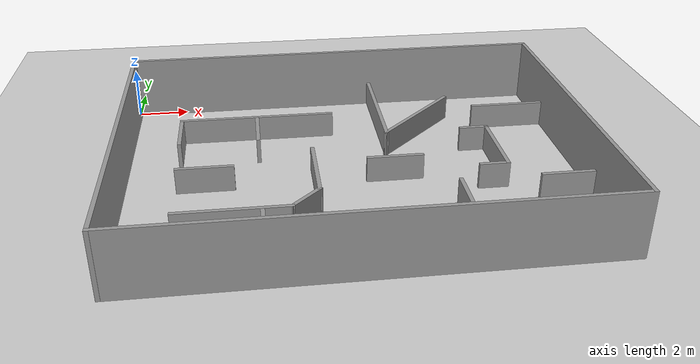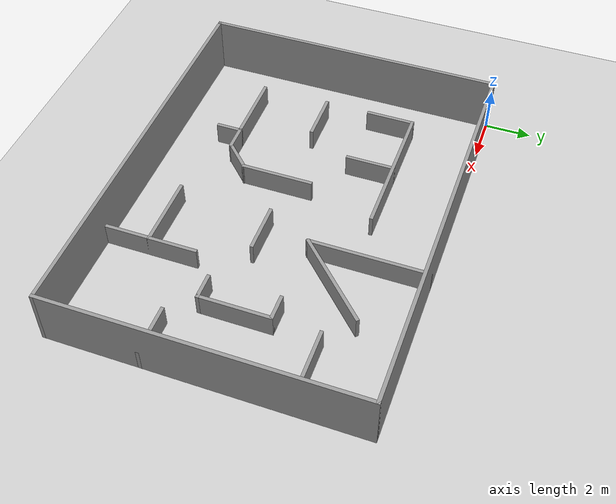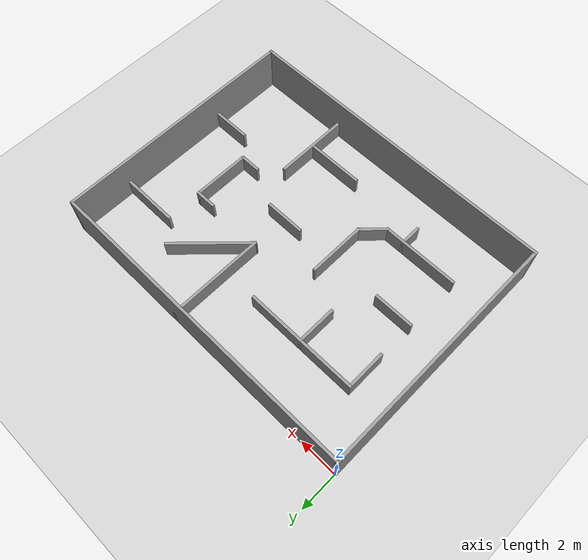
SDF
<sdf version="1.4">
 <world name="default">
  <light name="sun" type="directional">
   <pose>0 0 10 0 -0 0</pose>
   <diffuse>0.8 0.8 0.8 1</diffuse>
   <specular>0.2 0.2 0.2 1</specular>
   <attenuation>
    <range>1000</range>
    <constant>0.9</constant>
    <linear>0.01</linear>
    <quadratic>0.001</quadratic>
   </attenuation>
   <direction>-0.5 0.1 -0.9</direction>
   <spot><inner_angle>0</inner_angle><outer_angle>0</outer_angle><falloff>0</falloff></spot>
  </light>
  <model name="ground_plane">
   <static>1</static>
   <link name="link">
    <collision name="collision">
     <geometry><plane><normal>0 0 1</normal><size>100 100</size></plane></geometry>
     <surface>
      <contact><collide_bitmask>65535</collide_bitmask></contact>
      <friction><ode><mu>100</mu><mu2>50</mu2></ode></friction>
     </surface>
    </collision>
    <visual name="visual">
     <cast_shadows>0</cast_shadows>
     <geometry><plane><normal>0 0 1</normal><size>100 100</size></plane></geometry>
     <material>
      <script><uri>file://media/materials/scripts/gazebo.material</uri><name>Gazebo/Grey</name></script>
     </material>
    </visual>
   </link>
  </model>
  <gravity>0 0 -9.8</gravity>
  <magnetic_field>6e-06 2.3e-05 -4.2e-05</magnetic_field>
  <atmosphere type="adiabatic"/>
  <physics type="ode">
   <max_step_size>0.001</max_step_size>
   <real_time_factor>1</real_time_factor>
   <real_time_update_rate>1000</real_time_update_rate>
  </physics>
  <scene><ambient>0.4 0.4 0.4 1</ambient><background>0.7 0.7 0.7 1</background><shadows>1</shadows></scene>
  <spherical_coordinates>
   <surface_model>EARTH_WGS84</surface_model>
   <latitude_deg>0</latitude_deg>
   <longitude_deg>0</longitude_deg>
   <elevation>0</elevation>
   <heading_deg>0</heading_deg>
  </spherical_coordinates>
  <model name="ppo_maze_0">
   <pose>8.5 -6.5 0 0 -0 0</pose>
   <link name="Wall_343">
    <collision name="Wall_343_Collision">
     <geometry><box><size>17.15 0.15 2.5</size></box></geometry>
     <pose>0 0 1.25 0 -0 0</pose>
    </collision>
    <visual name="Wall_343_Visual">
     <pose>0 0 1.25 0 -0 0</pose>
     <geometry><box><size>17.15 0.15 2.5</size></box></geometry>
     <material>
      <script><uri>file://media/materials/scripts/gazebo.material</uri><name>Gazebo/Grey</name></script>
      <ambient>1 1 1 1</ambient>
     </material>
     <meta><layer>0</layer></meta>
    </visual>
    <pose>0 6.5 0 0 -0 0</pose>
   </link>
   <link name="Wall_344">
    <collision name="Wall_344_Collision">
     <geometry><box><size>13.15 0.15 2.5</size></box></geometry>
     <pose>0 0 1.25 0 -0 0</pose>
    </collision>
    <visual name="Wall_344_Visual">
     <pose>0 0 1.25 0 -0 0</pose>
     <geometry><box><size>13.15 0.15 2.5</size></box></geometry>
     <material>
      <script><uri>file://media/materials/scripts/gazebo.material</uri><name>Gazebo/Grey</name></script>
      <ambient>1 1 1 1</ambient>
     </material>
     <meta><layer>0</layer></meta>
    </visual>
    <pose>8.5 0 0 0 -0 -1.5708</pose>
   </link>
   <link name="Wall_345">
    <collision name="Wall_345_Collision">
     <geometry><box><size>17.15 0.15 2.5</size></box></geometry>
     <pose>0 0 1.25 0 -0 0</pose>
    </collision>
    <visual name="Wall_345_Visual">
     <pose>0 0 1.25 0 -0 0</pose>
     <geometry><box><size>17.15 0.15 2.5</size></box></geometry>
     <material>
      <script><uri>file://media/materials/scripts/gazebo.material</uri><name>Gazebo/Grey</name></script>
      <ambient>1 1 1 1</ambient>
     </material>
     <meta><layer>0</layer></meta>
    </visual>
    <pose>0 -6.5 0 0 -0 3.14159</pose>
   </link>
   <link name="Wall_346">
    <collision name="Wall_346_Collision">
     <geometry><box><size>13.15 0.15 2.5</size></box></geometry>
     <pose>0 0 1.25 0 -0 0</pose>
    </collision>
    <visual name="Wall_346_Visual">
     <pose>0 0 1.25 0 -0 0</pose>
     <geometry><box><size>13.15 0.15 2.5</size></box></geometry>
     <material>
      <script><uri>file://media/materials/scripts/gazebo.material</uri><name>Gazebo/Grey</name></script>
      <ambient>1 1 1 1</ambient>
     </material>
     <meta><layer>0</layer></meta>
    </visual>
    <pose>-8.5 0 0 0 -0 1.5708</pose>
   </link>
   <link name="Wall_348">
    <collision name="Wall_348_Collision">
     <geometry><box><size>2.15 0.15 1</size></box></geometry>
     <pose>0 0 0.5 0 -0 0</pose>
    </collision>
    <visual name="Wall_348_Visual">
     <pose>0 0 0.5 0 -0 0</pose>
     <geometry><box><size>2.15 0.15 1</size></box></geometry>
     <material>
      <script><uri>file://media/materials/scripts/gazebo.material</uri><name>Gazebo/Grey</name></script>
      <ambient>1 1 1 1</ambient>
     </material>
     <meta><layer>0</layer></meta>
    </visual>
    <pose>7.5 -2.5 0 0 -0 3.14159</pose>
   </link>
   <link name="Wall_350">
    <collision name="Wall_350_Collision">
     <geometry><box><size>2.15 0.15 1</size></box></geometry>
     <pose>0 0 0.5 0 -0 0</pose>
    </collision>
    <visual name="Wall_350_Visual">
     <pose>0 0 0.5 0 -0 0</pose>
     <geometry><box><size>2.15 0.15 1</size></box></geometry>
     <material>
      <script><uri>file://media/materials/scripts/gazebo.material</uri><name>Gazebo/Grey</name></script>
      <ambient>1 1 1 1</ambient>
     </material>
     <meta><layer>0</layer></meta>
    </visual>
    <pose>-6.5 2.5 0 0 -0 1.5708</pose>
   </link>
   <link name="Wall_351">
    <collision name="Wall_351_Collision">
     <geometry><box><size>6.15 0.15 1</size></box></geometry>
     <pose>0 0 0.5 0 -0 0</pose>
    </collision>
    <visual name="Wall_351_Visual">
     <pose>0 0 0.5 0 -0 0</pose>
     <geometry><box><size>6.15 0.15 1</size></box></geometry>
     <material>
      <script><uri>file://media/materials/scripts/gazebo.material</uri><name>Gazebo/Grey</name></script>
      <ambient>1 1 1 1</ambient>
     </material>
     <meta><layer>0</layer></meta>
    </visual>
    <pose>-3.5 3.5 0 0 -0 0</pose>
   </link>
   <link name="Wall_353">
    <collision name="Wall_353_Collision">
     <geometry><box><size>2.15 0.15 1</size></box></geometry>
     <pose>0 0 0.5 0 -0 0</pose>
    </collision>
    <visual name="Wall_353_Visual">
     <pose>0 0 0.5 0 -0 0</pose>
     <geometry><box><size>2.15 0.15 1</size></box></geometry>
     <material>
      <script><uri>file://media/materials/scripts/gazebo.material</uri><name>Gazebo/Grey</name></script>
      <ambient>1 1 1 1</ambient>
     </material>
     <meta><layer>0</layer></meta>
    </visual>
    <pose>-3.5 2.5 0 0 -0 -1.5708</pose>
   </link>
   <link name="Wall_355">
    <collision name="Wall_355_Collision">
     <geometry><box><size>5.15 0.15 1</size></box></geometry>
     <pose>0 0 0.5 0 -0 0</pose>
    </collision>
    <visual name="Wall_355_Visual">
     <pose>0 0 0.5 0 -0 0</pose>
     <geometry><box><size>5.15 0.15 1</size></box></geometry>
     <material>
      <script><uri>file://media/materials/scripts/gazebo.material</uri><name>Gazebo/Grey</name></script>
      <ambient>1 1 1 1</ambient>
     </material>
     <meta><layer>0</layer></meta>
    </visual>
    <pose>1.5 4 0 0 -0 -1.5708</pose>
   </link>
   <link name="Wall_356">
    <collision name="Wall_356_Collision">
     <geometry><box><size>4.39264 0.15 1</size></box></geometry>
     <pose>0 0 0.5 0 -0 0</pose>
    </collision>
    <visual name="Wall_356_Visual">
     <pose>0 0 0.5 0 -0 0</pose>
     <geometry><box><size>4.39264 0.15 1</size></box></geometry>
     <material>
      <script><uri>file://media/materials/scripts/gazebo.material</uri><name>Gazebo/Grey</name></script>
      <ambient>1 1 1 1</ambient>
     </material>
     <meta><layer>0</layer></meta>
    </visual>
    <pose>3 3 0 0 -0 0.785398</pose>
   </link>
   <link name="Wall_358">
    <collision name="Wall_358_Collision">
     <geometry><box><size>3.15 0.15 1</size></box></geometry>
     <pose>0 0 0.5 0 -0 0</pose>
    </collision>
    <visual name="Wall_358_Visual">
     <pose>0 0 0.5 0 -0 0</pose>
     <geometry><box><size>3.15 0.15 1</size></box></geometry>
     <material>
      <script><uri>file://media/materials/scripts/gazebo.material</uri><name>Gazebo/Grey</name></script>
      <ambient>1 1 1 1</ambient>
     </material>
     <meta><layer>0</layer></meta>
    </visual>
    <pose>7 3.453 0 0 -0 3.14159</pose>
   </link>
   <link name="Wall_360">
    <collision name="Wall_360_Collision">
     <geometry><box><size>1.15 0.15 1</size></box></geometry>
     <pose>0 0 0.5 0 -0 0</pose>
    </collision>
    <visual name="Wall_360_Visual">
     <pose>0 0 0.5 0 -0 0</pose>
     <geometry><box><size>1.15 0.15 1</size></box></geometry>
     <material>
      <script><uri>file://media/materials/scripts/gazebo.material</uri><name>Gazebo/Grey</name></script>
      <ambient>1 1 1 1</ambient>
     </material>
     <meta><layer>0</layer></meta>
    </visual>
    <pose>5 1.5 0 0 -0 0</pose>
   </link>
   <link name="Wall_361">
    <collision name="Wall_361_Collision">
     <geometry><box><size>3.15 0.15 1</size></box></geometry>
     <pose>0 0 0.5 0 -0 0</pose>
    </collision>
    <visual name="Wall_361_Visual">
     <pose>0 0 0.5 0 -0 0</pose>
     <geometry><box><size>3.15 0.15 1</size></box></geometry>
     <material>
      <script><uri>file://media/materials/scripts/gazebo.material</uri><name>Gazebo/Grey</name></script>
      <ambient>1 1 1 1</ambient>
     </material>
     <meta><layer>0</layer></meta>
    </visual>
    <pose>5.5 0 0 0 -0 -1.5708</pose>
   </link>
   <link name="Wall_362">
    <collision name="Wall_362_Collision">
     <geometry><box><size>1.15 0.15 1</size></box></geometry>
     <pose>0 0 0.5 0 -0 0</pose>
    </collision>
    <visual name="Wall_362_Visual">
     <pose>0 0 0.5 0 -0 0</pose>
     <geometry><box><size>1.15 0.15 1</size></box></geometry>
     <material>
      <script><uri>file://media/materials/scripts/gazebo.material</uri><name>Gazebo/Grey</name></script>
      <ambient>1 1 1 1</ambient>
     </material>
     <meta><layer>0</layer></meta>
    </visual>
    <pose>5 -1.5 0 0 -0 3.14159</pose>
   </link>
   <link name="Wall_364">
    <collision name="Wall_364_Collision">
     <geometry><box><size>4.15 0.15 1</size></box></geometry>
     <pose>0 0 0.5 0 -0 0</pose>
    </collision>
    <visual name="Wall_364_Visual">
     <pose>0 0 0.5 0 -0 0</pose>
     <geometry><box><size>4.15 0.15 1</size></box></geometry>
     <material>
      <script><uri>file://media/materials/scripts/gazebo.material</uri><name>Gazebo/Grey</name></script>
      <ambient>1 1 1 1</ambient>
     </material>
     <meta><layer>0</layer></meta>
    </visual>
    <pose>-4.5 -3.5 0 0 -0 0</pose>
   </link>
   <link name="Wall_365">
    <collision name="Wall_365_Collision">
     <geometry><box><size>1.56421 0.15 1</size></box></geometry>
     <pose>0 0 0.5 0 -0 0</pose>
    </collision>
    <visual name="Wall_365_Visual">
     <pose>0 0 0.5 0 -0 0</pose>
     <geometry><box><size>1.56421 0.15 1</size></box></geometry>
     <material>
      <script><uri>file://media/materials/scripts/gazebo.material</uri><name>Gazebo/Grey</name></script>
      <ambient>1 1 1 1</ambient>
     </material>
     <meta><layer>0</layer></meta>
    </visual>
    <pose>-2 -3 0 0 -0 0.785398</pose>
   </link>
   <link name="Wall_366">
    <collision name="Wall_366_Collision">
     <geometry><box><size>3.15 0.15 1</size></box></geometry>
     <pose>0 0 0.5 0 -0 0</pose>
    </collision>
    <visual name="Wall_366_Visual">
     <pose>0 0 0.5 0 -0 0</pose>
     <geometry><box><size>3.15 0.15 1</size></box></geometry>
     <material>
      <script><uri>file://media/materials/scripts/gazebo.material</uri><name>Gazebo/Grey</name></script>
      <ambient>1 1 1 1</ambient>
     </material>
     <meta><layer>0</layer></meta>
    </visual>
    <pose>-1.5 -1 0 0 -0 1.5708</pose>
   </link>
   <link name="Wall_368">
    <collision name="Wall_368_Collision">
     <geometry><box><size>1.15 0.15 1</size></box></geometry>
     <pose>0 0 0.5 0 -0 0</pose>
    </collision>
    <visual name="Wall_368_Visual">
     <pose>0 0 0.5 0 -0 0</pose>
     <geometry><box><size>1.15 0.15 1</size></box></geometry>
     <material>
      <script><uri>file://media/materials/scripts/gazebo.material</uri><name>Gazebo/Grey</name></script>
      <ambient>1 1 1 1</ambient>
     </material>
     <meta><layer>0</layer></meta>
    </visual>
    <pose>-3.5 -4 0 0 -0 -1.5708</pose>
   </link>
   <link name="Wall_370">
    <collision name="Wall_370_Collision">
     <geometry><box><size>4.15 0.15 1</size></box></geometry>
     <pose>0 0 0.5 0 -0 0</pose>
    </collision>
    <visual name="Wall_370_Visual">
     <pose>0 0 0.5 0 -0 0</pose>
     <geometry><box><size>4.15 0.15 1</size></box></geometry>
     <material>
      <script><uri>file://media/materials/scripts/gazebo.material</uri><name>Gazebo/Grey</name></script>
      <ambient>1 1 1 1</ambient>
     </material>
     <meta><layer>0</layer></meta>
    </visual>
    <pose>3.5 -4.5 0 0 -0 -1.5708</pose>
   </link>
   <link name="Wall_372">
    <collision name="Wall_372_Collision">
     <geometry><box><size>3.15 0.15 1</size></box></geometry>
     <pose>0 0 0.5 0 -0 0</pose>
    </collision>
    <visual name="Wall_372_Visual">
     <pose>0 0 0.5 0 -0 0</pose>
     <geometry><box><size>3.15 0.15 1</size></box></geometry>
     <material>
      <script><uri>file://media/materials/scripts/gazebo.material</uri><name>Gazebo/Grey</name></script>
      <ambient>1 1 1 1</ambient>
     </material>
     <meta><layer>0</layer></meta>
    </visual>
    <pose>2 -4.5 0 0 -0 0</pose>
   </link>
   <link name="Wall_374">
    <collision name="Wall_374_Collision">
     <geometry><box><size>2.15 0.15 1</size></box></geometry>
     <pose>0 0 0.5 0 -0 0</pose>
    </collision>
    <visual name="Wall_374_Visual">
     <pose>0 0 0.5 0 -0 0</pose>
     <geometry><box><size>2.15 0.15 1</size></box></geometry>
     <material>
      <script><uri>file://media/materials/scripts/gazebo.material</uri><name>Gazebo/Grey</name></script>
      <ambient>1 1 1 1</ambient>
     </material>
     <meta><layer>0</layer></meta>
    </visual>
    <pose>1.5 -0.5 0 0 -0 0</pose>
   </link>
   <link name="Wall_376">
    <collision name="Wall_376_Collision">
     <geometry><box><size>2.15 0.15 1</size></box></geometry>
     <pose>0 0 0.5 0 -0 0</pose>
    </collision>
    <visual name="Wall_376_Visual">
     <pose>0 0 0.5 0 -0 0</pose>
     <geometry><box><size>2.15 0.15 1</size></box></geometry>
     <material>
      <script><uri>file://media/materials/scripts/gazebo.material</uri><name>Gazebo/Grey</name></script>
      <ambient>1 1 1 1</ambient>
     </material>
     <meta><layer>0</layer></meta>
    </visual>
    <pose>-5.5 -0.5 0 0 -0 0</pose>
   </link>
   <static>1</static>
  </model>
 </world>
</sdf>
